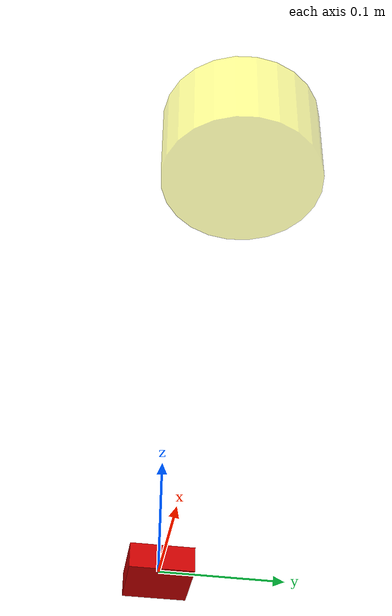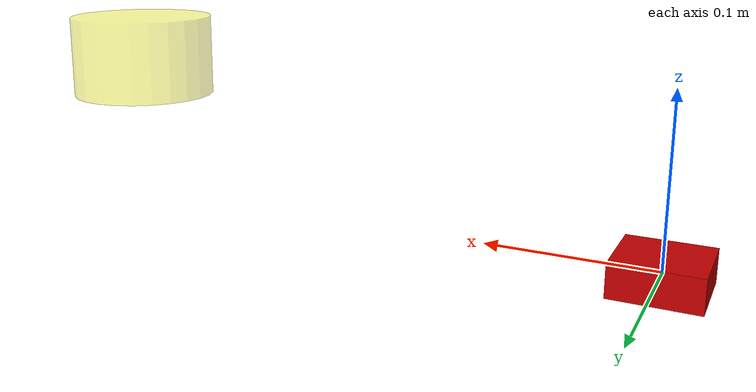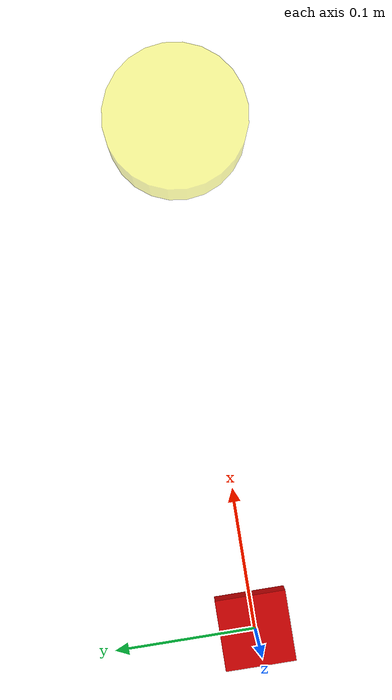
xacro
<?xml version="1.0"?>

<robot name="box_robot" xmlns:xacro="http://ros.org/wiki/xacro">

   <!-- Include all component files -->
   <xacro:include filename="$(find cartographer_ros)/urdf/aiv_virtual_simple/materials.urdf.xacro" />
   <xacro:include filename="$(find cartographer_ros)/urdf/aiv_virtual_simple/base.urdf.xacro" />

   <!-- Add the base and wheels -->
   <base name="base" color="TransparentGreen"/>

</robot>

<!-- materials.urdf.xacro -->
<robot>

  <!-- Put all the color definitions in a separate file -->

  <material name="Black">
    <color rgba="0.2 0.2 0.2 1.0"/>
  </material>

   <material name="TransparentBlack">
    <color rgba="0.2 0.2 0.2 0.8"/>
  </material>

  <material name="Orange">
    <color rgba="1.0  0.55 0.0 1.0"/>
  </material>

  <material name="Grey">
    <color rgba="0.7 0.7 0.7 1.0"/>
  </material>

  <material name="DarkGrey">
    <color rgba="0.3 0.3 0.3 1.0"/>
  </material>

  <material name="Red">
    <color rgba="0.8 0.0 0.0 1.0"/>
  </material>

  <material name="White">
    <color rgba="1.0 1.0 1.0 1.0"/>
  </material>

  <material name="OffWhite">
    <color rgba="0.8 0.8 0.8 1.0"/>
  </material>

  <material name="whiteTransparent">
	<color rgba="0.7 0.7 0.7 .5"/>
  </material>

  <material name="Blue">
    <color rgba="0.0 0.0 0.8 1.0"/>
  </material>

  <material name="Green">
    <color rgba="0.0 0.8 0.0 1.0"/>
  </material>

  <material name="TransparentGreen">
    <color rgba="0.0 0.8 0.0 0.5"/>
  </material>

</robot>

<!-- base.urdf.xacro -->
<robot name="base" xmlns:xacro="http://ros.org/wiki/xacro">

  <!-- Define a number of dimensions using properties -->
  <property name="base_box_length" value="0.825" />   <!-- length=0.815(base)+0.01(mechanical CA) -->
  <property name="base_box_width" value="0.553" />
  <property name="base_box_height" value="0.126" />
  <property name="base_equal_radius" value="0.5" />
  <property name="base_box_elevation" value="0.039" />

  <property name="laser_height" value="0.052" />
  <property name="laser_radius" value="0.046" />
  <property name="laser_offset_x" value="0.3445" />
  <property name="laser_offset_z" value="0.094" />

  <property name="PI" value="3.1415926" />

  <!-- The base xacro macro -->
  <macro name="base" params="name color">
	  <link name="base_footprint_virtual">
		  <visual>
		    <origin xyz="0 0 0" rpy="0 0 0" />
		    <geometry>
		      <box size="0.05 0.05 0.02" />
		    </geometry>
		    <material name="Red" />
		  </visual>
		    <collision>
		        <origin xyz="0 0 0" rpy="0 0 0"/>
		        <geometry>
		            <cylinder length="0.3" radius="${base_equal_radius}"/>
		        </geometry>
		    </collision>
	  </link>
  </macro>

	<link name="laser_virtual">
		<visual>
	  		<geometry>
	   			<cylinder radius="${laser_radius}" length="${laser_height}"/>
	  		</geometry>
	  		<material name="yellow">
		  		<color rgba="1 1 0 0.4"/>
	  		</material>
		</visual>
	</link>

	<joint name="laser_joint" type="fixed">
		<origin rpy="0  0  0" xyz="${laser_offset_x}  0  ${laser_offset_z}"/>
		<parent link="base_footprint_virtual"/>
		<child link="laser_virtual"/>
	</joint>

</robot>
